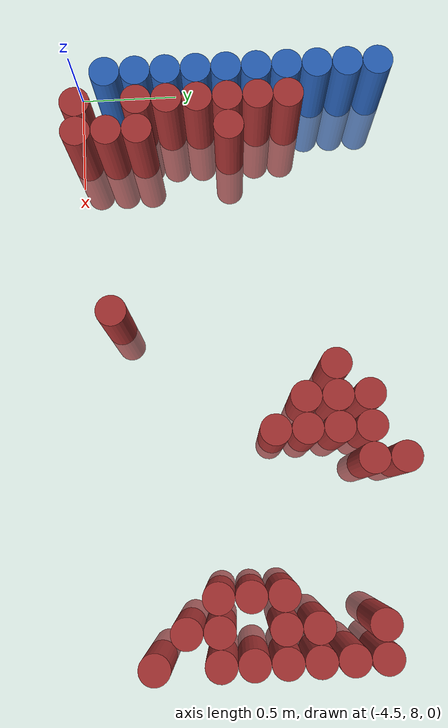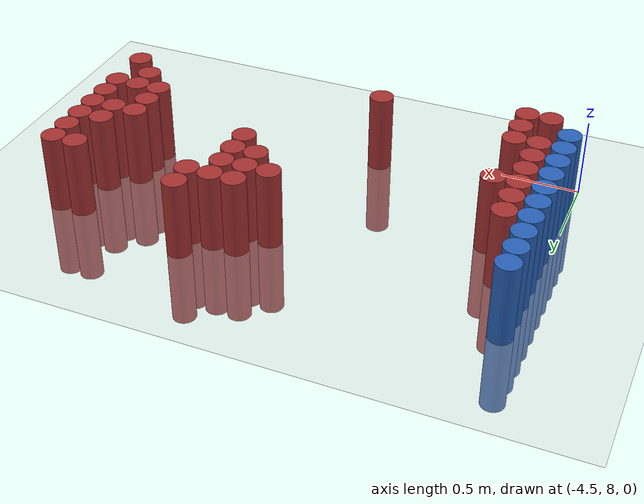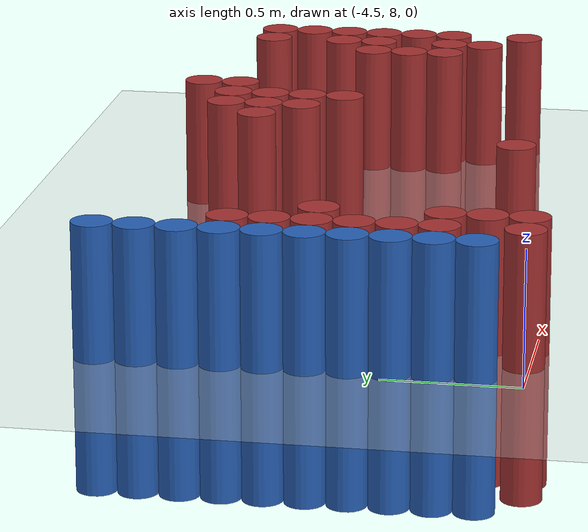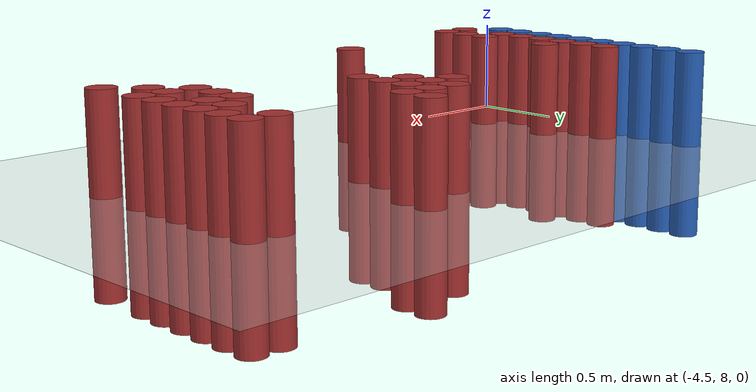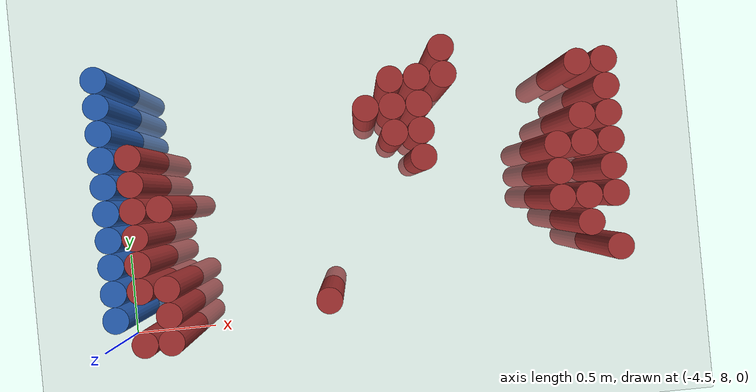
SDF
<sdf version="1.6">
 <world name="default">
  <model name="ground_plane">
   <static>1</static>
   <link name="link">
    <collision name="collision">
     <geometry><plane><normal>0 0 1</normal><size>100 100</size></plane></geometry>
     <surface><friction><ode><mu>100</mu><mu2>50</mu2></ode></friction></surface>
    </collision>
    <visual name="visual">
     <cast_shadows>0</cast_shadows>
     <geometry><plane><normal>0 0 1</normal><size>100 100</size></plane></geometry>
     <material>
      <script><uri>file://media/materials/scripts/gazebo.material</uri><name>Gazebo/Grey</name></script>
     </material>
    </visual>
   </link>
  </model>
  <model name="unit_cylinder_116">
   <static>1</static>
   <pose>-4.425000 8.175000 0.000000 0.000000 0.000000 0.000000</pose>
   <link name="link">
    <inertial>
     <mass>1</mass>
     <inertia><ixx>0.145833</ixx><ixy>0</ixy><ixz>0</ixz><iyy>0.145833</iyy><iyz>0</iyz><izz>0.125</izz></inertia>
    </inertial>
    <collision name="collision">
     <geometry><cylinder><radius>0.075000</radius><length>1</length></cylinder></geometry>
    </collision>
    <visual name="visual">
     <geometry><cylinder><radius>0.075000</radius><length>1</length></cylinder></geometry>
     <material>
      <ambient>0.152000 0.379000 0.720000 1</ambient>
      <diffuse>0.152000 0.379000 0.720000 1</diffuse>
     </material>
     <material>
      <script><name>Gazebo/Grey</name><uri>file://media/materials/scripts/gazebo.material</uri></script>
     </material>
    </visual>
   </link>
  </model>
  <model name="unit_cylinder_117">
   <static>1</static>
   <pose>-4.425000 8.325000 0.000000 0.000000 0.000000 0.000000</pose>
   <link name="link">
    <inertial>
     <mass>1</mass>
     <inertia><ixx>0.145833</ixx><ixy>0</ixy><ixz>0</ixz><iyy>0.145833</iyy><iyz>0</iyz><izz>0.125</izz></inertia>
    </inertial>
    <collision name="collision">
     <geometry><cylinder><radius>0.075000</radius><length>1</length></cylinder></geometry>
    </collision>
    <visual name="visual">
     <geometry><cylinder><radius>0.075000</radius><length>1</length></cylinder></geometry>
     <material>
      <ambient>0.152000 0.379000 0.720000 1</ambient>
      <diffuse>0.152000 0.379000 0.720000 1</diffuse>
     </material>
     <material>
      <script><name>Gazebo/Grey</name><uri>file://media/materials/scripts/gazebo.material</uri></script>
     </material>
    </visual>
   </link>
  </model>
  <model name="unit_cylinder_118">
   <static>1</static>
   <pose>-4.425000 8.475000 0.000000 0.000000 0.000000 0.000000</pose>
   <link name="link">
    <inertial>
     <mass>1</mass>
     <inertia><ixx>0.145833</ixx><ixy>0</ixy><ixz>0</ixz><iyy>0.145833</iyy><iyz>0</iyz><izz>0.125</izz></inertia>
    </inertial>
    <collision name="collision">
     <geometry><cylinder><radius>0.075000</radius><length>1</length></cylinder></geometry>
    </collision>
    <visual name="visual">
     <geometry><cylinder><radius>0.075000</radius><length>1</length></cylinder></geometry>
     <material>
      <ambient>0.152000 0.379000 0.720000 1</ambient>
      <diffuse>0.152000 0.379000 0.720000 1</diffuse>
     </material>
     <material>
      <script><name>Gazebo/Grey</name><uri>file://media/materials/scripts/gazebo.material</uri></script>
     </material>
    </visual>
   </link>
  </model>
  <model name="unit_cylinder_119">
   <static>1</static>
   <pose>-4.425000 8.625000 0.000000 0.000000 0.000000 0.000000</pose>
   <link name="link">
    <inertial>
     <mass>1</mass>
     <inertia><ixx>0.145833</ixx><ixy>0</ixy><ixz>0</ixz><iyy>0.145833</iyy><iyz>0</iyz><izz>0.125</izz></inertia>
    </inertial>
    <collision name="collision">
     <geometry><cylinder><radius>0.075000</radius><length>1</length></cylinder></geometry>
    </collision>
    <visual name="visual">
     <geometry><cylinder><radius>0.075000</radius><length>1</length></cylinder></geometry>
     <material>
      <ambient>0.152000 0.379000 0.720000 1</ambient>
      <diffuse>0.152000 0.379000 0.720000 1</diffuse>
     </material>
     <material>
      <script><name>Gazebo/Grey</name><uri>file://media/materials/scripts/gazebo.material</uri></script>
     </material>
    </visual>
   </link>
  </model>
  <model name="unit_cylinder_120">
   <static>1</static>
   <pose>-4.425000 8.775000 0.000000 0.000000 0.000000 0.000000</pose>
   <link name="link">
    <inertial>
     <mass>1</mass>
     <inertia><ixx>0.145833</ixx><ixy>0</ixy><ixz>0</ixz><iyy>0.145833</iyy><iyz>0</iyz><izz>0.125</izz></inertia>
    </inertial>
    <collision name="collision">
     <geometry><cylinder><radius>0.075000</radius><length>1</length></cylinder></geometry>
    </collision>
    <visual name="visual">
     <geometry><cylinder><radius>0.075000</radius><length>1</length></cylinder></geometry>
     <material>
      <ambient>0.152000 0.379000 0.720000 1</ambient>
      <diffuse>0.152000 0.379000 0.720000 1</diffuse>
     </material>
     <material>
      <script><name>Gazebo/Grey</name><uri>file://media/materials/scripts/gazebo.material</uri></script>
     </material>
    </visual>
   </link>
  </model>
  <model name="unit_cylinder_121">
   <static>1</static>
   <pose>-4.425000 8.925000 0.000000 0.000000 0.000000 0.000000</pose>
   <link name="link">
    <inertial>
     <mass>1</mass>
     <inertia><ixx>0.145833</ixx><ixy>0</ixy><ixz>0</ixz><iyy>0.145833</iyy><iyz>0</iyz><izz>0.125</izz></inertia>
    </inertial>
    <collision name="collision">
     <geometry><cylinder><radius>0.075000</radius><length>1</length></cylinder></geometry>
    </collision>
    <visual name="visual">
     <geometry><cylinder><radius>0.075000</radius><length>1</length></cylinder></geometry>
     <material>
      <ambient>0.152000 0.379000 0.720000 1</ambient>
      <diffuse>0.152000 0.379000 0.720000 1</diffuse>
     </material>
     <material>
      <script><name>Gazebo/Grey</name><uri>file://media/materials/scripts/gazebo.material</uri></script>
     </material>
    </visual>
   </link>
  </model>
  <model name="unit_cylinder_122">
   <static>1</static>
   <pose>-4.425000 9.075000 0.000000 0.000000 0.000000 0.000000</pose>
   <link name="link">
    <inertial>
     <mass>1</mass>
     <inertia><ixx>0.145833</ixx><ixy>0</ixy><ixz>0</ixz><iyy>0.145833</iyy><iyz>0</iyz><izz>0.125</izz></inertia>
    </inertial>
    <collision name="collision">
     <geometry><cylinder><radius>0.075000</radius><length>1</length></cylinder></geometry>
    </collision>
    <visual name="visual">
     <geometry><cylinder><radius>0.075000</radius><length>1</length></cylinder></geometry>
     <material>
      <ambient>0.152000 0.379000 0.720000 1</ambient>
      <diffuse>0.152000 0.379000 0.720000 1</diffuse>
     </material>
     <material>
      <script><name>Gazebo/Grey</name><uri>file://media/materials/scripts/gazebo.material</uri></script>
     </material>
    </visual>
   </link>
  </model>
  <model name="unit_cylinder_123">
   <static>1</static>
   <pose>-4.425000 9.225000 0.000000 0.000000 0.000000 0.000000</pose>
   <link name="link">
    <inertial>
     <mass>1</mass>
     <inertia><ixx>0.145833</ixx><ixy>0</ixy><ixz>0</ixz><iyy>0.145833</iyy><iyz>0</iyz><izz>0.125</izz></inertia>
    </inertial>
    <collision name="collision">
     <geometry><cylinder><radius>0.075000</radius><length>1</length></cylinder></geometry>
    </collision>
    <visual name="visual">
     <geometry><cylinder><radius>0.075000</radius><length>1</length></cylinder></geometry>
     <material>
      <ambient>0.152000 0.379000 0.720000 1</ambient>
      <diffuse>0.152000 0.379000 0.720000 1</diffuse>
     </material>
     <material>
      <script><name>Gazebo/Grey</name><uri>file://media/materials/scripts/gazebo.material</uri></script>
     </material>
    </visual>
   </link>
  </model>
  <model name="unit_cylinder_124">
   <static>1</static>
   <pose>-4.425000 9.375000 0.000000 0.000000 0.000000 0.000000</pose>
   <link name="link">
    <inertial>
     <mass>1</mass>
     <inertia><ixx>0.145833</ixx><ixy>0</ixy><ixz>0</ixz><iyy>0.145833</iyy><iyz>0</iyz><izz>0.125</izz></inertia>
    </inertial>
    <collision name="collision">
     <geometry><cylinder><radius>0.075000</radius><length>1</length></cylinder></geometry>
    </collision>
    <visual name="visual">
     <geometry><cylinder><radius>0.075000</radius><length>1</length></cylinder></geometry>
     <material>
      <ambient>0.152000 0.379000 0.720000 1</ambient>
      <diffuse>0.152000 0.379000 0.720000 1</diffuse>
     </material>
     <material>
      <script><name>Gazebo/Grey</name><uri>file://media/materials/scripts/gazebo.material</uri></script>
     </material>
    </visual>
   </link>
  </model>
  <model name="unit_cylinder_125">
   <static>1</static>
   <pose>-4.425000 9.525000 0.000000 0.000000 0.000000 0.000000</pose>
   <link name="link">
    <inertial>
     <mass>1</mass>
     <inertia><ixx>0.145833</ixx><ixy>0</ixy><ixz>0</ixz><iyy>0.145833</iyy><iyz>0</iyz><izz>0.125</izz></inertia>
    </inertial>
    <collision name="collision">
     <geometry><cylinder><radius>0.075000</radius><length>1</length></cylinder></geometry>
    </collision>
    <visual name="visual">
     <geometry><cylinder><radius>0.075000</radius><length>1</length></cylinder></geometry>
     <material>
      <ambient>0.152000 0.379000 0.720000 1</ambient>
      <diffuse>0.152000 0.379000 0.720000 1</diffuse>
     </material>
     <material>
      <script><name>Gazebo/Grey</name><uri>file://media/materials/scripts/gazebo.material</uri></script>
     </material>
    </visual>
   </link>
  </model>
  <model name="unit_cylinder_139">
   <static>1</static>
   <pose>-4.275000 8.025000 0.000000 0.000000 0.000000 0.000000</pose>
   <link name="link">
    <inertial>
     <mass>1</mass>
     <inertia><ixx>0.145833</ixx><ixy>0</ixy><ixz>0</ixz><iyy>0.145833</iyy><iyz>0</iyz><izz>0.125</izz></inertia>
    </inertial>
    <collision name="collision">
     <geometry><cylinder><radius>0.075000</radius><length>1</length></cylinder></geometry>
    </collision>
    <visual name="visual">
     <geometry><cylinder><radius>0.075000</radius><length>1</length></cylinder></geometry>
     <material>
      <ambient>0.648000 0.192000 0.192000 1</ambient>
      <diffuse>0.648000 0.192000 0.192000 1</diffuse>
     </material>
     <material>
      <script><name>Gazebo/Grey</name><uri>file://media/materials/scripts/gazebo.material</uri></script>
     </material>
    </visual>
   </link>
  </model>
  <model name="unit_cylinder_140">
   <static>1</static>
   <pose>-4.275000 8.325000 0.000000 0.000000 0.000000 0.000000</pose>
   <link name="link">
    <inertial>
     <mass>1</mass>
     <inertia><ixx>0.145833</ixx><ixy>0</ixy><ixz>0</ixz><iyy>0.145833</iyy><iyz>0</iyz><izz>0.125</izz></inertia>
    </inertial>
    <collision name="collision">
     <geometry><cylinder><radius>0.075000</radius><length>1</length></cylinder></geometry>
    </collision>
    <visual name="visual">
     <geometry><cylinder><radius>0.075000</radius><length>1</length></cylinder></geometry>
     <material>
      <ambient>0.648000 0.192000 0.192000 1</ambient>
      <diffuse>0.648000 0.192000 0.192000 1</diffuse>
     </material>
     <material>
      <script><name>Gazebo/Grey</name><uri>file://media/materials/scripts/gazebo.material</uri></script>
     </material>
    </visual>
   </link>
  </model>
  <model name="unit_cylinder_141">
   <static>1</static>
   <pose>-4.275000 8.475000 0.000000 0.000000 0.000000 0.000000</pose>
   <link name="link">
    <inertial>
     <mass>1</mass>
     <inertia><ixx>0.145833</ixx><ixy>0</ixy><ixz>0</ixz><iyy>0.145833</iyy><iyz>0</iyz><izz>0.125</izz></inertia>
    </inertial>
    <collision name="collision">
     <geometry><cylinder><radius>0.075000</radius><length>1</length></cylinder></geometry>
    </collision>
    <visual name="visual">
     <geometry><cylinder><radius>0.075000</radius><length>1</length></cylinder></geometry>
     <material>
      <ambient>0.648000 0.192000 0.192000 1</ambient>
      <diffuse>0.648000 0.192000 0.192000 1</diffuse>
     </material>
     <material>
      <script><name>Gazebo/Grey</name><uri>file://media/materials/scripts/gazebo.material</uri></script>
     </material>
    </visual>
   </link>
  </model>
  <model name="unit_cylinder_142">
   <static>1</static>
   <pose>-4.275000 8.625000 0.000000 0.000000 0.000000 0.000000</pose>
   <link name="link">
    <inertial>
     <mass>1</mass>
     <inertia><ixx>0.145833</ixx><ixy>0</ixy><ixz>0</ixz><iyy>0.145833</iyy><iyz>0</iyz><izz>0.125</izz></inertia>
    </inertial>
    <collision name="collision">
     <geometry><cylinder><radius>0.075000</radius><length>1</length></cylinder></geometry>
    </collision>
    <visual name="visual">
     <geometry><cylinder><radius>0.075000</radius><length>1</length></cylinder></geometry>
     <material>
      <ambient>0.648000 0.192000 0.192000 1</ambient>
      <diffuse>0.648000 0.192000 0.192000 1</diffuse>
     </material>
     <material>
      <script><name>Gazebo/Grey</name><uri>file://media/materials/scripts/gazebo.material</uri></script>
     </material>
    </visual>
   </link>
  </model>
  <model name="unit_cylinder_143">
   <static>1</static>
   <pose>-4.275000 8.775000 0.000000 0.000000 0.000000 0.000000</pose>
   <link name="link">
    <inertial>
     <mass>1</mass>
     <inertia><ixx>0.145833</ixx><ixy>0</ixy><ixz>0</ixz><iyy>0.145833</iyy><iyz>0</iyz><izz>0.125</izz></inertia>
    </inertial>
    <collision name="collision">
     <geometry><cylinder><radius>0.075000</radius><length>1</length></cylinder></geometry>
    </collision>
    <visual name="visual">
     <geometry><cylinder><radius>0.075000</radius><length>1</length></cylinder></geometry>
     <material>
      <ambient>0.648000 0.192000 0.192000 1</ambient>
      <diffuse>0.648000 0.192000 0.192000 1</diffuse>
     </material>
     <material>
      <script><name>Gazebo/Grey</name><uri>file://media/materials/scripts/gazebo.material</uri></script>
     </material>
    </visual>
   </link>
  </model>
  <model name="unit_cylinder_144">
   <static>1</static>
   <pose>-4.275000 8.925000 0.000000 0.000000 0.000000 0.000000</pose>
   <link name="link">
    <inertial>
     <mass>1</mass>
     <inertia><ixx>0.145833</ixx><ixy>0</ixy><ixz>0</ixz><iyy>0.145833</iyy><iyz>0</iyz><izz>0.125</izz></inertia>
    </inertial>
    <collision name="collision">
     <geometry><cylinder><radius>0.075000</radius><length>1</length></cylinder></geometry>
    </collision>
    <visual name="visual">
     <geometry><cylinder><radius>0.075000</radius><length>1</length></cylinder></geometry>
     <material>
      <ambient>0.648000 0.192000 0.192000 1</ambient>
      <diffuse>0.648000 0.192000 0.192000 1</diffuse>
     </material>
     <material>
      <script><name>Gazebo/Grey</name><uri>file://media/materials/scripts/gazebo.material</uri></script>
     </material>
    </visual>
   </link>
  </model>
  <model name="unit_cylinder_145">
   <static>1</static>
   <pose>-4.275000 9.075000 0.000000 0.000000 0.000000 0.000000</pose>
   <link name="link">
    <inertial>
     <mass>1</mass>
     <inertia><ixx>0.145833</ixx><ixy>0</ixy><ixz>0</ixz><iyy>0.145833</iyy><iyz>0</iyz><izz>0.125</izz></inertia>
    </inertial>
    <collision name="collision">
     <geometry><cylinder><radius>0.075000</radius><length>1</length></cylinder></geometry>
    </collision>
    <visual name="visual">
     <geometry><cylinder><radius>0.075000</radius><length>1</length></cylinder></geometry>
     <material>
      <ambient>0.648000 0.192000 0.192000 1</ambient>
      <diffuse>0.648000 0.192000 0.192000 1</diffuse>
     </material>
     <material>
      <script><name>Gazebo/Grey</name><uri>file://media/materials/scripts/gazebo.material</uri></script>
     </material>
    </visual>
   </link>
  </model>
  <model name="unit_cylinder_154">
   <static>1</static>
   <pose>-4.125000 8.025000 0.000000 0.000000 0.000000 0.000000</pose>
   <link name="link">
    <inertial>
     <mass>1</mass>
     <inertia><ixx>0.145833</ixx><ixy>0</ixy><ixz>0</ixz><iyy>0.145833</iyy><iyz>0</iyz><izz>0.125</izz></inertia>
    </inertial>
    <collision name="collision">
     <geometry><cylinder><radius>0.075000</radius><length>1</length></cylinder></geometry>
    </collision>
    <visual name="visual">
     <geometry><cylinder><radius>0.075000</radius><length>1</length></cylinder></geometry>
     <material>
      <ambient>0.648000 0.192000 0.192000 1</ambient>
      <diffuse>0.648000 0.192000 0.192000 1</diffuse>
     </material>
     <material>
      <script><name>Gazebo/Grey</name><uri>file://media/materials/scripts/gazebo.material</uri></script>
     </material>
    </visual>
   </link>
  </model>
  <model name="unit_cylinder_155">
   <static>1</static>
   <pose>-4.125000 8.175000 0.000000 0.000000 0.000000 0.000000</pose>
   <link name="link">
    <inertial>
     <mass>1</mass>
     <inertia><ixx>0.145833</ixx><ixy>0</ixy><ixz>0</ixz><iyy>0.145833</iyy><iyz>0</iyz><izz>0.125</izz></inertia>
    </inertial>
    <collision name="collision">
     <geometry><cylinder><radius>0.075000</radius><length>1</length></cylinder></geometry>
    </collision>
    <visual name="visual">
     <geometry><cylinder><radius>0.075000</radius><length>1</length></cylinder></geometry>
     <material>
      <ambient>0.648000 0.192000 0.192000 1</ambient>
      <diffuse>0.648000 0.192000 0.192000 1</diffuse>
     </material>
     <material>
      <script><name>Gazebo/Grey</name><uri>file://media/materials/scripts/gazebo.material</uri></script>
     </material>
    </visual>
   </link>
  </model>
  <model name="unit_cylinder_156">
   <static>1</static>
   <pose>-4.125000 8.325000 0.000000 0.000000 0.000000 0.000000</pose>
   <link name="link">
    <inertial>
     <mass>1</mass>
     <inertia><ixx>0.145833</ixx><ixy>0</ixy><ixz>0</ixz><iyy>0.145833</iyy><iyz>0</iyz><izz>0.125</izz></inertia>
    </inertial>
    <collision name="collision">
     <geometry><cylinder><radius>0.075000</radius><length>1</length></cylinder></geometry>
    </collision>
    <visual name="visual">
     <geometry><cylinder><radius>0.075000</radius><length>1</length></cylinder></geometry>
     <material>
      <ambient>0.648000 0.192000 0.192000 1</ambient>
      <diffuse>0.648000 0.192000 0.192000 1</diffuse>
     </material>
     <material>
      <script><name>Gazebo/Grey</name><uri>file://media/materials/scripts/gazebo.material</uri></script>
     </material>
    </visual>
   </link>
  </model>
  <model name="unit_cylinder_157">
   <static>1</static>
   <pose>-4.125000 8.775000 0.000000 0.000000 0.000000 0.000000</pose>
   <link name="link">
    <inertial>
     <mass>1</mass>
     <inertia><ixx>0.145833</ixx><ixy>0</ixy><ixz>0</ixz><iyy>0.145833</iyy><iyz>0</iyz><izz>0.125</izz></inertia>
    </inertial>
    <collision name="collision">
     <geometry><cylinder><radius>0.075000</radius><length>1</length></cylinder></geometry>
    </collision>
    <visual name="visual">
     <geometry><cylinder><radius>0.075000</radius><length>1</length></cylinder></geometry>
     <material>
      <ambient>0.648000 0.192000 0.192000 1</ambient>
      <diffuse>0.648000 0.192000 0.192000 1</diffuse>
     </material>
     <material>
      <script><name>Gazebo/Grey</name><uri>file://media/materials/scripts/gazebo.material</uri></script>
     </material>
    </visual>
   </link>
  </model>
  <model name="unit_cylinder_165">
   <static>1</static>
   <pose>-3.225000 8.175000 0.000000 0.000000 0.000000 0.000000</pose>
   <link name="link">
    <inertial>
     <mass>1</mass>
     <inertia><ixx>0.145833</ixx><ixy>0</ixy><ixz>0</ixz><iyy>0.145833</iyy><iyz>0</iyz><izz>0.125</izz></inertia>
    </inertial>
    <collision name="collision">
     <geometry><cylinder><radius>0.075000</radius><length>1</length></cylinder></geometry>
    </collision>
    <visual name="visual">
     <geometry><cylinder><radius>0.075000</radius><length>1</length></cylinder></geometry>
     <material>
      <ambient>0.648000 0.192000 0.192000 1</ambient>
      <diffuse>0.648000 0.192000 0.192000 1</diffuse>
     </material>
     <material>
      <script><name>Gazebo/Grey</name><uri>file://media/materials/scripts/gazebo.material</uri></script>
     </material>
    </visual>
   </link>
  </model>
  <model name="unit_cylinder_169">
   <static>1</static>
   <pose>-2.925000 9.225000 0.000000 0.000000 0.000000 0.000000</pose>
   <link name="link">
    <inertial>
     <mass>1</mass>
     <inertia><ixx>0.145833</ixx><ixy>0</ixy><ixz>0</ixz><iyy>0.145833</iyy><iyz>0</iyz><izz>0.125</izz></inertia>
    </inertial>
    <collision name="collision">
     <geometry><cylinder><radius>0.075000</radius><length>1</length></cylinder></geometry>
    </collision>
    <visual name="visual">
     <geometry><cylinder><radius>0.075000</radius><length>1</length></cylinder></geometry>
     <material>
      <ambient>0.648000 0.192000 0.192000 1</ambient>
      <diffuse>0.648000 0.192000 0.192000 1</diffuse>
     </material>
     <material>
      <script><name>Gazebo/Grey</name><uri>file://media/materials/scripts/gazebo.material</uri></script>
     </material>
    </visual>
   </link>
  </model>
  <model name="unit_cylinder_171">
   <static>1</static>
   <pose>-2.775000 9.075000 0.000000 0.000000 0.000000 0.000000</pose>
   <link name="link">
    <inertial>
     <mass>1</mass>
     <inertia><ixx>0.145833</ixx><ixy>0</ixy><ixz>0</ixz><iyy>0.145833</iyy><iyz>0</iyz><izz>0.125</izz></inertia>
    </inertial>
    <collision name="collision">
     <geometry><cylinder><radius>0.075000</radius><length>1</length></cylinder></geometry>
    </collision>
    <visual name="visual">
     <geometry><cylinder><radius>0.075000</radius><length>1</length></cylinder></geometry>
     <material>
      <ambient>0.648000 0.192000 0.192000 1</ambient>
      <diffuse>0.648000 0.192000 0.192000 1</diffuse>
     </material>
     <material>
      <script><name>Gazebo/Grey</name><uri>file://media/materials/scripts/gazebo.material</uri></script>
     </material>
    </visual>
   </link>
  </model>
  <model name="unit_cylinder_172">
   <static>1</static>
   <pose>-2.775000 9.225000 0.000000 0.000000 0.000000 0.000000</pose>
   <link name="link">
    <inertial>
     <mass>1</mass>
     <inertia><ixx>0.145833</ixx><ixy>0</ixy><ixz>0</ixz><iyy>0.145833</iyy><iyz>0</iyz><izz>0.125</izz></inertia>
    </inertial>
    <collision name="collision">
     <geometry><cylinder><radius>0.075000</radius><length>1</length></cylinder></geometry>
    </collision>
    <visual name="visual">
     <geometry><cylinder><radius>0.075000</radius><length>1</length></cylinder></geometry>
     <material>
      <ambient>0.648000 0.192000 0.192000 1</ambient>
      <diffuse>0.648000 0.192000 0.192000 1</diffuse>
     </material>
     <material>
      <script><name>Gazebo/Grey</name><uri>file://media/materials/scripts/gazebo.material</uri></script>
     </material>
    </visual>
   </link>
  </model>
  <model name="unit_cylinder_173">
   <static>1</static>
   <pose>-2.775000 9.375000 0.000000 0.000000 0.000000 0.000000</pose>
   <link name="link">
    <inertial>
     <mass>1</mass>
     <inertia><ixx>0.145833</ixx><ixy>0</ixy><ixz>0</ixz><iyy>0.145833</iyy><iyz>0</iyz><izz>0.125</izz></inertia>
    </inertial>
    <collision name="collision">
     <geometry><cylinder><radius>0.075000</radius><length>1</length></cylinder></geometry>
    </collision>
    <visual name="visual">
     <geometry><cylinder><radius>0.075000</radius><length>1</length></cylinder></geometry>
     <material>
      <ambient>0.648000 0.192000 0.192000 1</ambient>
      <diffuse>0.648000 0.192000 0.192000 1</diffuse>
     </material>
     <material>
      <script><name>Gazebo/Grey</name><uri>file://media/materials/scripts/gazebo.material</uri></script>
     </material>
    </visual>
   </link>
  </model>
  <model name="unit_cylinder_175">
   <static>1</static>
   <pose>-2.625000 8.925000 0.000000 0.000000 0.000000 0.000000</pose>
   <link name="link">
    <inertial>
     <mass>1</mass>
     <inertia><ixx>0.145833</ixx><ixy>0</ixy><ixz>0</ixz><iyy>0.145833</iyy><iyz>0</iyz><izz>0.125</izz></inertia>
    </inertial>
    <collision name="collision">
     <geometry><cylinder><radius>0.075000</radius><length>1</length></cylinder></geometry>
    </collision>
    <visual name="visual">
     <geometry><cylinder><radius>0.075000</radius><length>1</length></cylinder></geometry>
     <material>
      <ambient>0.648000 0.192000 0.192000 1</ambient>
      <diffuse>0.648000 0.192000 0.192000 1</diffuse>
     </material>
     <material>
      <script><name>Gazebo/Grey</name><uri>file://media/materials/scripts/gazebo.material</uri></script>
     </material>
    </visual>
   </link>
  </model>
  <model name="unit_cylinder_176">
   <static>1</static>
   <pose>-2.625000 9.075000 0.000000 0.000000 0.000000 0.000000</pose>
   <link name="link">
    <inertial>
     <mass>1</mass>
     <inertia><ixx>0.145833</ixx><ixy>0</ixy><ixz>0</ixz><iyy>0.145833</iyy><iyz>0</iyz><izz>0.125</izz></inertia>
    </inertial>
    <collision name="collision">
     <geometry><cylinder><radius>0.075000</radius><length>1</length></cylinder></geometry>
    </collision>
    <visual name="visual">
     <geometry><cylinder><radius>0.075000</radius><length>1</length></cylinder></geometry>
     <material>
      <ambient>0.648000 0.192000 0.192000 1</ambient>
      <diffuse>0.648000 0.192000 0.192000 1</diffuse>
     </material>
     <material>
      <script><name>Gazebo/Grey</name><uri>file://media/materials/scripts/gazebo.material</uri></script>
     </material>
    </visual>
   </link>
  </model>
  <model name="unit_cylinder_177">
   <static>1</static>
   <pose>-2.625000 9.225000 0.000000 0.000000 0.000000 0.000000</pose>
   <link name="link">
    <inertial>
     <mass>1</mass>
     <inertia><ixx>0.145833</ixx><ixy>0</ixy><ixz>0</ixz><iyy>0.145833</iyy><iyz>0</iyz><izz>0.125</izz></inertia>
    </inertial>
    <collision name="collision">
     <geometry><cylinder><radius>0.075000</radius><length>1</length></cylinder></geometry>
    </collision>
    <visual name="visual">
     <geometry><cylinder><radius>0.075000</radius><length>1</length></cylinder></geometry>
     <material>
      <ambient>0.648000 0.192000 0.192000 1</ambient>
      <diffuse>0.648000 0.192000 0.192000 1</diffuse>
     </material>
     <material>
      <script><name>Gazebo/Grey</name><uri>file://media/materials/scripts/gazebo.material</uri></script>
     </material>
    </visual>
   </link>
  </model>
  <model name="unit_cylinder_178">
   <static>1</static>
   <pose>-2.625000 9.375000 0.000000 0.000000 0.000000 0.000000</pose>
   <link name="link">
    <inertial>
     <mass>1</mass>
     <inertia><ixx>0.145833</ixx><ixy>0</ixy><ixz>0</ixz><iyy>0.145833</iyy><iyz>0</iyz><izz>0.125</izz></inertia>
    </inertial>
    <collision name="collision">
     <geometry><cylinder><radius>0.075000</radius><length>1</length></cylinder></geometry>
    </collision>
    <visual name="visual">
     <geometry><cylinder><radius>0.075000</radius><length>1</length></cylinder></geometry>
     <material>
      <ambient>0.648000 0.192000 0.192000 1</ambient>
      <diffuse>0.648000 0.192000 0.192000 1</diffuse>
     </material>
     <material>
      <script><name>Gazebo/Grey</name><uri>file://media/materials/scripts/gazebo.material</uri></script>
     </material>
    </visual>
   </link>
  </model>
  <model name="unit_cylinder_181">
   <static>1</static>
   <pose>-2.475000 9.375000 0.000000 0.000000 0.000000 0.000000</pose>
   <link name="link">
    <inertial>
     <mass>1</mass>
     <inertia><ixx>0.145833</ixx><ixy>0</ixy><ixz>0</ixz><iyy>0.145833</iyy><iyz>0</iyz><izz>0.125</izz></inertia>
    </inertial>
    <collision name="collision">
     <geometry><cylinder><radius>0.075000</radius><length>1</length></cylinder></geometry>
    </collision>
    <visual name="visual">
     <geometry><cylinder><radius>0.075000</radius><length>1</length></cylinder></geometry>
     <material>
      <ambient>0.648000 0.192000 0.192000 1</ambient>
      <diffuse>0.648000 0.192000 0.192000 1</diffuse>
     </material>
     <material>
      <script><name>Gazebo/Grey</name><uri>file://media/materials/scripts/gazebo.material</uri></script>
     </material>
    </visual>
   </link>
  </model>
  <model name="unit_cylinder_182">
   <static>1</static>
   <pose>-2.475000 9.525000 0.000000 0.000000 0.000000 0.000000</pose>
   <link name="link">
    <inertial>
     <mass>1</mass>
     <inertia><ixx>0.145833</ixx><ixy>0</ixy><ixz>0</ixz><iyy>0.145833</iyy><iyz>0</iyz><izz>0.125</izz></inertia>
    </inertial>
    <collision name="collision">
     <geometry><cylinder><radius>0.075000</radius><length>1</length></cylinder></geometry>
    </collision>
    <visual name="visual">
     <geometry><cylinder><radius>0.075000</radius><length>1</length></cylinder></geometry>
     <material>
      <ambient>0.648000 0.192000 0.192000 1</ambient>
      <diffuse>0.648000 0.192000 0.192000 1</diffuse>
     </material>
     <material>
      <script><name>Gazebo/Grey</name><uri>file://media/materials/scripts/gazebo.material</uri></script>
     </material>
    </visual>
   </link>
  </model>
  <model name="unit_cylinder_190">
   <static>1</static>
   <pose>-1.875000 8.625000 0.000000 0.000000 0.000000 0.000000</pose>
   <link name="link">
    <inertial>
     <mass>1</mass>
     <inertia><ixx>0.145833</ixx><ixy>0</ixy><ixz>0</ixz><iyy>0.145833</iyy><iyz>0</iyz><izz>0.125</izz></inertia>
    </inertial>
    <collision name="collision">
     <geometry><cylinder><radius>0.075000</radius><length>1</length></cylinder></geometry>
    </collision>
    <visual name="visual">
     <geometry><cylinder><radius>0.075000</radius><length>1</length></cylinder></geometry>
     <material>
      <ambient>0.648000 0.192000 0.192000 1</ambient>
      <diffuse>0.648000 0.192000 0.192000 1</diffuse>
     </material>
     <material>
      <script><name>Gazebo/Grey</name><uri>file://media/materials/scripts/gazebo.material</uri></script>
     </material>
    </visual>
   </link>
  </model>
  <model name="unit_cylinder_191">
   <static>1</static>
   <pose>-1.875000 8.775000 0.000000 0.000000 0.000000 0.000000</pose>
   <link name="link">
    <inertial>
     <mass>1</mass>
     <inertia><ixx>0.145833</ixx><ixy>0</ixy><ixz>0</ixz><iyy>0.145833</iyy><iyz>0</iyz><izz>0.125</izz></inertia>
    </inertial>
    <collision name="collision">
     <geometry><cylinder><radius>0.075000</radius><length>1</length></cylinder></geometry>
    </collision>
    <visual name="visual">
     <geometry><cylinder><radius>0.075000</radius><length>1</length></cylinder></geometry>
     <material>
      <ambient>0.648000 0.192000 0.192000 1</ambient>
      <diffuse>0.648000 0.192000 0.192000 1</diffuse>
     </material>
     <material>
      <script><name>Gazebo/Grey</name><uri>file://media/materials/scripts/gazebo.material</uri></script>
     </material>
    </visual>
   </link>
  </model>
  <model name="unit_cylinder_192">
   <static>1</static>
   <pose>-1.875000 8.925000 0.000000 0.000000 0.000000 0.000000</pose>
   <link name="link">
    <inertial>
     <mass>1</mass>
     <inertia><ixx>0.145833</ixx><ixy>0</ixy><ixz>0</ixz><iyy>0.145833</iyy><iyz>0</iyz><izz>0.125</izz></inertia>
    </inertial>
    <collision name="collision">
     <geometry><cylinder><radius>0.075000</radius><length>1</length></cylinder></geometry>
    </collision>
    <visual name="visual">
     <geometry><cylinder><radius>0.075000</radius><length>1</length></cylinder></geometry>
     <material>
      <ambient>0.648000 0.192000 0.192000 1</ambient>
      <diffuse>0.648000 0.192000 0.192000 1</diffuse>
     </material>
     <material>
      <script><name>Gazebo/Grey</name><uri>file://media/materials/scripts/gazebo.material</uri></script>
     </material>
    </visual>
   </link>
  </model>
  <model name="unit_cylinder_197">
   <static>1</static>
   <pose>-1.725000 8.475000 0.000000 0.000000 0.000000 0.000000</pose>
   <link name="link">
    <inertial>
     <mass>1</mass>
     <inertia><ixx>0.145833</ixx><ixy>0</ixy><ixz>0</ixz><iyy>0.145833</iyy><iyz>0</iyz><izz>0.125</izz></inertia>
    </inertial>
    <collision name="collision">
     <geometry><cylinder><radius>0.075000</radius><length>1</length></cylinder></geometry>
    </collision>
    <visual name="visual">
     <geometry><cylinder><radius>0.075000</radius><length>1</length></cylinder></geometry>
     <material>
      <ambient>0.648000 0.192000 0.192000 1</ambient>
      <diffuse>0.648000 0.192000 0.192000 1</diffuse>
     </material>
     <material>
      <script><name>Gazebo/Grey</name><uri>file://media/materials/scripts/gazebo.material</uri></script>
     </material>
    </visual>
   </link>
  </model>
  <model name="unit_cylinder_198">
   <static>1</static>
   <pose>-1.725000 8.625000 0.000000 0.000000 0.000000 0.000000</pose>
   <link name="link">
    <inertial>
     <mass>1</mass>
     <inertia><ixx>0.145833</ixx><ixy>0</ixy><ixz>0</ixz><iyy>0.145833</iyy><iyz>0</iyz><izz>0.125</izz></inertia>
    </inertial>
    <collision name="collision">
     <geometry><cylinder><radius>0.075000</radius><length>1</length></cylinder></geometry>
    </collision>
    <visual name="visual">
     <geometry><cylinder><radius>0.075000</radius><length>1</length></cylinder></geometry>
     <material>
      <ambient>0.648000 0.192000 0.192000 1</ambient>
      <diffuse>0.648000 0.192000 0.192000 1</diffuse>
     </material>
     <material>
      <script><name>Gazebo/Grey</name><uri>file://media/materials/scripts/gazebo.material</uri></script>
     </material>
    </visual>
   </link>
  </model>
  <model name="unit_cylinder_199">
   <static>1</static>
   <pose>-1.725000 8.925000 0.000000 0.000000 0.000000 0.000000</pose>
   <link name="link">
    <inertial>
     <mass>1</mass>
     <inertia><ixx>0.145833</ixx><ixy>0</ixy><ixz>0</ixz><iyy>0.145833</iyy><iyz>0</iyz><izz>0.125</izz></inertia>
    </inertial>
    <collision name="collision">
     <geometry><cylinder><radius>0.075000</radius><length>1</length></cylinder></geometry>
    </collision>
    <visual name="visual">
     <geometry><cylinder><radius>0.075000</radius><length>1</length></cylinder></geometry>
     <material>
      <ambient>0.648000 0.192000 0.192000 1</ambient>
      <diffuse>0.648000 0.192000 0.192000 1</diffuse>
     </material>
     <material>
      <script><name>Gazebo/Grey</name><uri>file://media/materials/scripts/gazebo.material</uri></script>
     </material>
    </visual>
   </link>
  </model>
  <model name="unit_cylinder_200">
   <static>1</static>
   <pose>-1.725000 9.075000 0.000000 0.000000 0.000000 0.000000</pose>
   <link name="link">
    <inertial>
     <mass>1</mass>
     <inertia><ixx>0.145833</ixx><ixy>0</ixy><ixz>0</ixz><iyy>0.145833</iyy><iyz>0</iyz><izz>0.125</izz></inertia>
    </inertial>
    <collision name="collision">
     <geometry><cylinder><radius>0.075000</radius><length>1</length></cylinder></geometry>
    </collision>
    <visual name="visual">
     <geometry><cylinder><radius>0.075000</radius><length>1</length></cylinder></geometry>
     <material>
      <ambient>0.648000 0.192000 0.192000 1</ambient>
      <diffuse>0.648000 0.192000 0.192000 1</diffuse>
     </material>
     <material>
      <script><name>Gazebo/Grey</name><uri>file://media/materials/scripts/gazebo.material</uri></script>
     </material>
    </visual>
   </link>
  </model>
  <model name="unit_cylinder_201">
   <static>1</static>
   <pose>-1.725000 9.375000 0.000000 0.000000 0.000000 0.000000</pose>
   <link name="link">
    <inertial>
     <mass>1</mass>
     <inertia><ixx>0.145833</ixx><ixy>0</ixy><ixz>0</ixz><iyy>0.145833</iyy><iyz>0</iyz><izz>0.125</izz></inertia>
    </inertial>
    <collision name="collision">
     <geometry><cylinder><radius>0.075000</radius><length>1</length></cylinder></geometry>
    </collision>
    <visual name="visual">
     <geometry><cylinder><radius>0.075000</radius><length>1</length></cylinder></geometry>
     <material>
      <ambient>0.648000 0.192000 0.192000 1</ambient>
      <diffuse>0.648000 0.192000 0.192000 1</diffuse>
     </material>
     <material>
      <script><name>Gazebo/Grey</name><uri>file://media/materials/scripts/gazebo.material</uri></script>
     </material>
    </visual>
   </link>
  </model>
  <model name="unit_cylinder_206">
   <static>1</static>
   <pose>-1.575000 8.325000 0.000000 0.000000 0.000000 0.000000</pose>
   <link name="link">
    <inertial>
     <mass>1</mass>
     <inertia><ixx>0.145833</ixx><ixy>0</ixy><ixz>0</ixz><iyy>0.145833</iyy><iyz>0</iyz><izz>0.125</izz></inertia>
    </inertial>
    <collision name="collision">
     <geometry><cylinder><radius>0.075000</radius><length>1</length></cylinder></geometry>
    </collision>
    <visual name="visual">
     <geometry><cylinder><radius>0.075000</radius><length>1</length></cylinder></geometry>
     <material>
      <ambient>0.648000 0.192000 0.192000 1</ambient>
      <diffuse>0.648000 0.192000 0.192000 1</diffuse>
     </material>
     <material>
      <script><name>Gazebo/Grey</name><uri>file://media/materials/scripts/gazebo.material</uri></script>
     </material>
    </visual>
   </link>
  </model>
  <model name="unit_cylinder_207">
   <static>1</static>
   <pose>-1.575000 8.625000 0.000000 0.000000 0.000000 0.000000</pose>
   <link name="link">
    <inertial>
     <mass>1</mass>
     <inertia><ixx>0.145833</ixx><ixy>0</ixy><ixz>0</ixz><iyy>0.145833</iyy><iyz>0</iyz><izz>0.125</izz></inertia>
    </inertial>
    <collision name="collision">
     <geometry><cylinder><radius>0.075000</radius><length>1</length></cylinder></geometry>
    </collision>
    <visual name="visual">
     <geometry><cylinder><radius>0.075000</radius><length>1</length></cylinder></geometry>
     <material>
      <ambient>0.648000 0.192000 0.192000 1</ambient>
      <diffuse>0.648000 0.192000 0.192000 1</diffuse>
     </material>
     <material>
      <script><name>Gazebo/Grey</name><uri>file://media/materials/scripts/gazebo.material</uri></script>
     </material>
    </visual>
   </link>
  </model>
  <model name="unit_cylinder_208">
   <static>1</static>
   <pose>-1.575000 8.775000 0.000000 0.000000 0.000000 0.000000</pose>
   <link name="link">
    <inertial>
     <mass>1</mass>
     <inertia><ixx>0.145833</ixx><ixy>0</ixy><ixz>0</ixz><iyy>0.145833</iyy><iyz>0</iyz><izz>0.125</izz></inertia>
    </inertial>
    <collision name="collision">
     <geometry><cylinder><radius>0.075000</radius><length>1</length></cylinder></geometry>
    </collision>
    <visual name="visual">
     <geometry><cylinder><radius>0.075000</radius><length>1</length></cylinder></geometry>
     <material>
      <ambient>0.648000 0.192000 0.192000 1</ambient>
      <diffuse>0.648000 0.192000 0.192000 1</diffuse>
     </material>
     <material>
      <script><name>Gazebo/Grey</name><uri>file://media/materials/scripts/gazebo.material</uri></script>
     </material>
    </visual>
   </link>
  </model>
  <model name="unit_cylinder_209">
   <static>1</static>
   <pose>-1.575000 8.925000 0.000000 0.000000 0.000000 0.000000</pose>
   <link name="link">
    <inertial>
     <mass>1</mass>
     <inertia><ixx>0.145833</ixx><ixy>0</ixy><ixz>0</ixz><iyy>0.145833</iyy><iyz>0</iyz><izz>0.125</izz></inertia>
    </inertial>
    <collision name="collision">
     <geometry><cylinder><radius>0.075000</radius><length>1</length></cylinder></geometry>
    </collision>
    <visual name="visual">
     <geometry><cylinder><radius>0.075000</radius><length>1</length></cylinder></geometry>
     <material>
      <ambient>0.648000 0.192000 0.192000 1</ambient>
      <diffuse>0.648000 0.192000 0.192000 1</diffuse>
     </material>
     <material>
      <script><name>Gazebo/Grey</name><uri>file://media/materials/scripts/gazebo.material</uri></script>
     </material>
    </visual>
   </link>
  </model>
  <model name="unit_cylinder_210">
   <static>1</static>
   <pose>-1.575000 9.075000 0.000000 0.000000 0.000000 0.000000</pose>
   <link name="link">
    <inertial>
     <mass>1</mass>
     <inertia><ixx>0.145833</ixx><ixy>0</ixy><ixz>0</ixz><iyy>0.145833</iyy><iyz>0</iyz><izz>0.125</izz></inertia>
    </inertial>
    <collision name="collision">
     <geometry><cylinder><radius>0.075000</radius><length>1</length></cylinder></geometry>
    </collision>
    <visual name="visual">
     <geometry><cylinder><radius>0.075000</radius><length>1</length></cylinder></geometry>
     <material>
      <ambient>0.648000 0.192000 0.192000 1</ambient>
      <diffuse>0.648000 0.192000 0.192000 1</diffuse>
     </material>
     <material>
      <script><name>Gazebo/Grey</name><uri>file://media/materials/scripts/gazebo.material</uri></script>
     </material>
    </visual>
   </link>
  </model>
  <model name="unit_cylinder_211">
   <static>1</static>
   <pose>-1.575000 9.225000 0.000000 0.000000 0.000000 0.000000</pose>
   <link name="link">
    <inertial>
     <mass>1</mass>
     <inertia><ixx>0.145833</ixx><ixy>0</ixy><ixz>0</ixz><iyy>0.145833</iyy><iyz>0</iyz><izz>0.125</izz></inertia>
    </inertial>
    <collision name="collision">
     <geometry><cylinder><radius>0.075000</radius><length>1</length></cylinder></geometry>
    </collision>
    <visual name="visual">
     <geometry><cylinder><radius>0.075000</radius><length>1</length></cylinder></geometry>
     <material>
      <ambient>0.648000 0.192000 0.192000 1</ambient>
      <diffuse>0.648000 0.192000 0.192000 1</diffuse>
     </material>
     <material>
      <script><name>Gazebo/Grey</name><uri>file://media/materials/scripts/gazebo.material</uri></script>
     </material>
    </visual>
   </link>
  </model>
  <model name="unit_cylinder_212">
   <static>1</static>
   <pose>-1.575000 9.375000 0.000000 0.000000 0.000000 0.000000</pose>
   <link name="link">
    <inertial>
     <mass>1</mass>
     <inertia><ixx>0.145833</ixx><ixy>0</ixy><ixz>0</ixz><iyy>0.145833</iyy><iyz>0</iyz><izz>0.125</izz></inertia>
    </inertial>
    <collision name="collision">
     <geometry><cylinder><radius>0.075000</radius><length>1</length></cylinder></geometry>
    </collision>
    <visual name="visual">
     <geometry><cylinder><radius>0.075000</radius><length>1</length></cylinder></geometry>
     <material>
      <ambient>0.648000 0.192000 0.192000 1</ambient>
      <diffuse>0.648000 0.192000 0.192000 1</diffuse>
     </material>
     <material>
      <script><name>Gazebo/Grey</name><uri>file://media/materials/scripts/gazebo.material</uri></script>
     </material>
    </visual>
   </link>
  </model>
 </world>
</sdf>
